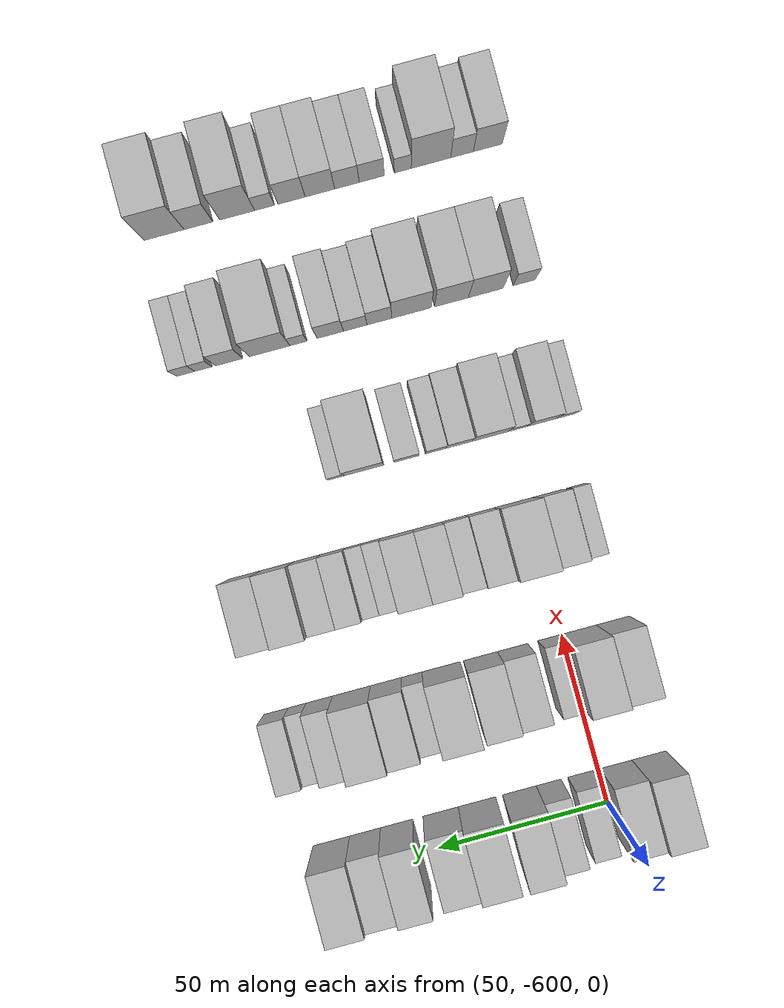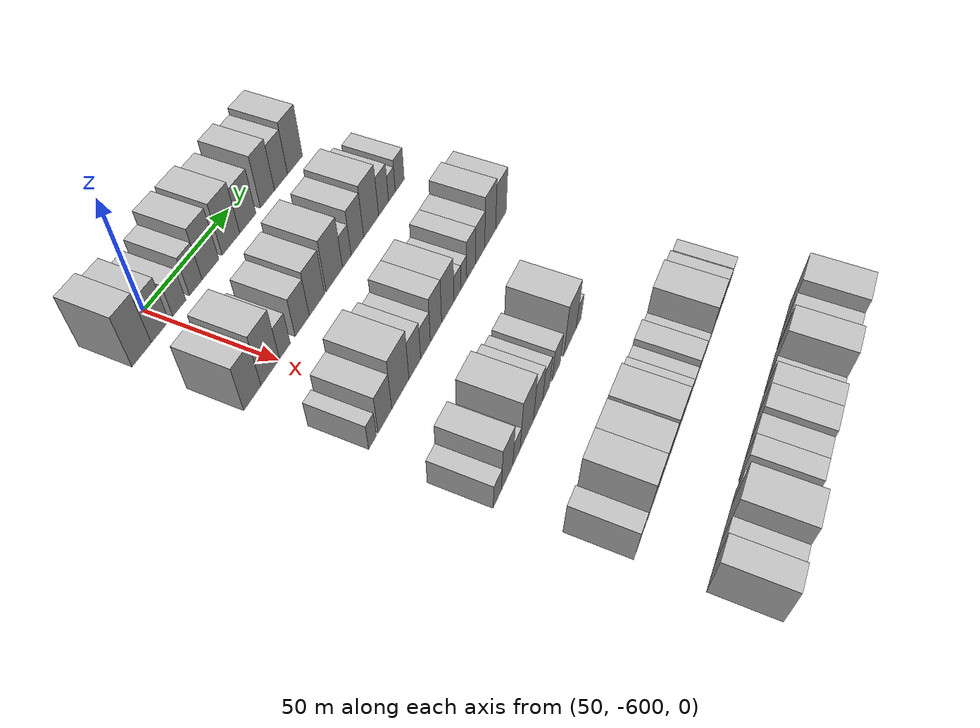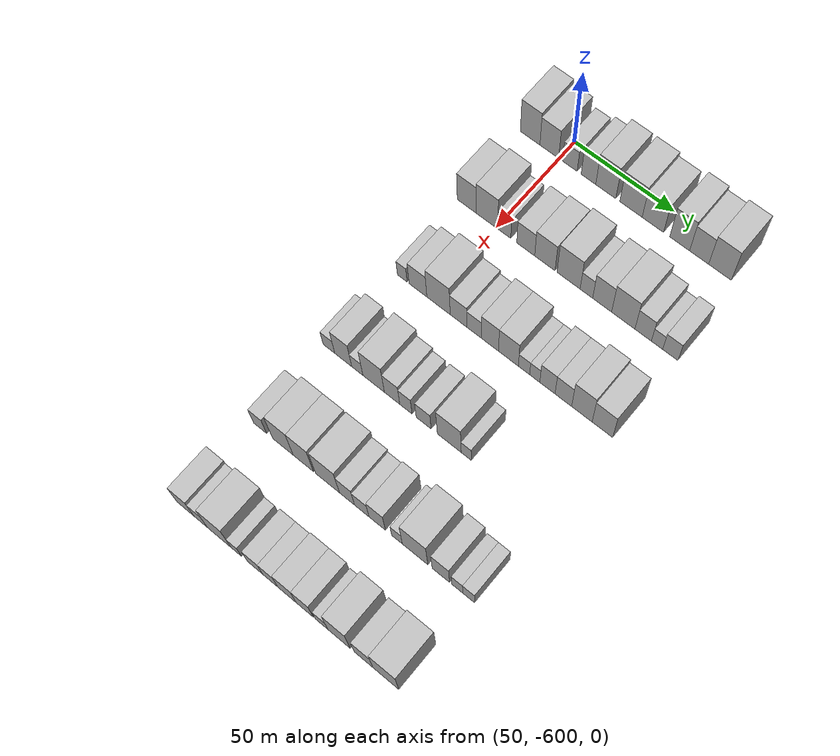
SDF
<sdf version="1.6">
 <world name="default">
  <model name="building_1">
   <static>1</static>
   <pose>50.0000 -614.9711 0 0.000000 0.000000 0.000000</pose>
   <link name="link">
    <pose>0 0 12.00 0 0 0</pose>
    <collision name="collision"><geometry><box><size>20.0000 10.0579 24.0000</size></box></geometry></collision>
    <visual name="visual">
     <cast_shadows>0</cast_shadows>
     <geometry><box><size>20.0000 10.0579 24.0000</size></box></geometry>
     <material>
      <script>
       <uri>model://HANNAS_wall/materials/scripts</uri>
       <uri>model://HANNAS_wall/materials/textures</uri>
       <name>vrc/HANNAS_wall</name>
      </script>
     </material>
    </visual>
   </link>
  </model>
  <model name="building_2">
   <static>1</static>
   <pose>50.0000 -605.1579 0 0.000000 0.000000 0.000000</pose>
   <link name="link">
    <pose>0 0 10.50 0 0 0</pose>
    <collision name="collision"><geometry><box><size>20.0000 9.5684 21.0000</size></box></geometry></collision>
    <visual name="visual">
     <cast_shadows>0</cast_shadows>
     <geometry><box><size>20.0000 9.5684 21.0000</size></box></geometry>
     <material>
      <script>
       <uri>model://HANNAS_wall/materials/scripts</uri>
       <uri>model://HANNAS_wall/materials/textures</uri>
       <name>vrc/HANNAS_wall</name>
      </script>
     </material>
    </visual>
   </link>
  </model>
  <model name="building_3">
   <static>1</static>
   <pose>50.0000 -594.6582 0 0.000000 0.000000 0.000000</pose>
   <link name="link">
    <pose>0 0 7.50 0 0 0</pose>
    <collision name="collision"><geometry><box><size>20.0000 7.4311 15.0000</size></box></geometry></collision>
    <visual name="visual">
     <cast_shadows>0</cast_shadows>
     <geometry><box><size>20.0000 7.4311 15.0000</size></box></geometry>
     <material>
      <script>
       <uri>model://HANNAS_wall/materials/scripts</uri>
       <uri>model://HANNAS_wall/materials/textures</uri>
       <name>vrc/HANNAS_wall</name>
      </script>
     </material>
    </visual>
   </link>
  </model>
  <model name="building_4">
   <static>1</static>
   <pose>50.0000 -585.2614 0 0.000000 0.000000 0.000000</pose>
   <link name="link">
    <pose>0 0 9.00 0 0 0</pose>
    <collision name="collision"><geometry><box><size>20.0000 7.3626 18.0000</size></box></geometry></collision>
    <visual name="visual">
     <cast_shadows>0</cast_shadows>
     <geometry><box><size>20.0000 7.3626 18.0000</size></box></geometry>
     <material>
      <script>
       <uri>model://HANNAS_wall/materials/scripts</uri>
       <uri>model://HANNAS_wall/materials/textures</uri>
       <name>vrc/HANNAS_wall</name>
      </script>
     </material>
    </visual>
   </link>
  </model>
  <model name="building_5">
   <static>1</static>
   <pose>50.0000 -576.5760 0 0.000000 0.000000 0.000000</pose>
   <link name="link">
    <pose>0 0 12.00 0 0 0</pose>
    <collision name="collision"><geometry><box><size>20.0000 10.0083 24.0000</size></box></geometry></collision>
    <visual name="visual">
     <cast_shadows>0</cast_shadows>
     <geometry><box><size>20.0000 10.0083 24.0000</size></box></geometry>
     <material>
      <script>
       <uri>model://HANNAS_wall/materials/scripts</uri>
       <uri>model://HANNAS_wall/materials/textures</uri>
       <name>vrc/HANNAS_wall</name>
      </script>
     </material>
    </visual>
   </link>
  </model>
  <model name="building_6">
   <static>1</static>
   <pose>50.0000 -564.0394 0 0.000000 0.000000 0.000000</pose>
   <link name="link">
    <pose>0 0 12.00 0 0 0</pose>
    <collision name="collision"><geometry><box><size>20.0000 11.0649 24.0000</size></box></geometry></collision>
    <visual name="visual">
     <cast_shadows>0</cast_shadows>
     <geometry><box><size>20.0000 11.0649 24.0000</size></box></geometry>
     <material>
      <script>
       <uri>model://HANNAS_wall/materials/scripts</uri>
       <uri>model://HANNAS_wall/materials/textures</uri>
       <name>vrc/HANNAS_wall</name>
      </script>
     </material>
    </visual>
   </link>
  </model>
  <model name="building_7">
   <static>1</static>
   <pose>50.0000 -553.2618 0 0.000000 0.000000 0.000000</pose>
   <link name="link">
    <pose>0 0 10.50 0 0 0</pose>
    <collision name="collision"><geometry><box><size>20.0000 10.4902 21.0000</size></box></geometry></collision>
    <visual name="visual">
     <cast_shadows>0</cast_shadows>
     <geometry><box><size>20.0000 10.4902 21.0000</size></box></geometry>
     <material>
      <script>
       <uri>model://HANNAS_wall/materials/scripts</uri>
       <uri>model://HANNAS_wall/materials/textures</uri>
       <name>vrc/HANNAS_wall</name>
      </script>
     </material>
    </visual>
   </link>
  </model>
  <model name="building_8">
   <static>1</static>
   <pose>50.0000 -540.2076 0 0.000000 0.000000 0.000000</pose>
   <link name="link">
    <pose>0 0 12.00 0 0 0</pose>
    <collision name="collision"><geometry><box><size>20.0000 9.6182 24.0000</size></box></geometry></collision>
    <visual name="visual">
     <cast_shadows>0</cast_shadows>
     <geometry><box><size>20.0000 9.6182 24.0000</size></box></geometry>
     <material>
      <script>
       <uri>model://HANNAS_wall/materials/scripts</uri>
       <uri>model://HANNAS_wall/materials/textures</uri>
       <name>vrc/HANNAS_wall</name>
      </script>
     </material>
    </visual>
   </link>
  </model>
  <model name="building_9">
   <static>1</static>
   <pose>50.0000 -530.8291 0 0.000000 0.000000 0.000000</pose>
   <link name="link">
    <pose>0 0 10.50 0 0 0</pose>
    <collision name="collision"><geometry><box><size>20.0000 9.1390 21.0000</size></box></geometry></collision>
    <visual name="visual">
     <cast_shadows>0</cast_shadows>
     <geometry><box><size>20.0000 9.1390 21.0000</size></box></geometry>
     <material>
      <script>
       <uri>model://HANNAS_wall/materials/scripts</uri>
       <uri>model://HANNAS_wall/materials/textures</uri>
       <name>vrc/HANNAS_wall</name>
      </script>
     </material>
    </visual>
   </link>
  </model>
  <model name="building_10">
   <static>1</static>
   <pose>50.0000 -520.8414 0 0.000000 0.000000 0.000000</pose>
   <link name="link">
    <pose>0 0 12.00 0 0 0</pose>
    <collision name="collision"><geometry><box><size>20.0000 10.8364 24.0000</size></box></geometry></collision>
    <visual name="visual">
     <cast_shadows>0</cast_shadows>
     <geometry><box><size>20.0000 10.8364 24.0000</size></box></geometry>
     <material>
      <script>
       <uri>model://HANNAS_wall/materials/scripts</uri>
       <uri>model://HANNAS_wall/materials/textures</uri>
       <name>vrc/HANNAS_wall</name>
      </script>
     </material>
    </visual>
   </link>
  </model>
  <model name="building_138">
   <static>1</static>
   <pose>90.0000 -615.1204 0 0.000000 0.000000 0.000000</pose>
   <link name="link">
    <pose>0 0 10.50 0 0 0</pose>
    <collision name="collision"><geometry><box><size>20.0000 9.7593 21.0000</size></box></geometry></collision>
    <visual name="visual">
     <cast_shadows>0</cast_shadows>
     <geometry><box><size>20.0000 9.7593 21.0000</size></box></geometry>
     <material>
      <script>
       <uri>model://HANNAS_wall/materials/scripts</uri>
       <uri>model://HANNAS_wall/materials/textures</uri>
       <name>vrc/HANNAS_wall</name>
      </script>
     </material>
    </visual>
   </link>
  </model>
  <model name="building_139">
   <static>1</static>
   <pose>90.0000 -604.8042 0 0.000000 0.000000 0.000000</pose>
   <link name="link">
    <pose>0 0 12.00 0 0 0</pose>
    <collision name="collision"><geometry><box><size>20.0000 10.8730 24.0000</size></box></geometry></collision>
    <visual name="visual">
     <cast_shadows>0</cast_shadows>
     <geometry><box><size>20.0000 10.8730 24.0000</size></box></geometry>
     <material>
      <script>
       <uri>model://HANNAS_wall/materials/scripts</uri>
       <uri>model://HANNAS_wall/materials/textures</uri>
       <name>vrc/HANNAS_wall</name>
      </script>
     </material>
    </visual>
   </link>
  </model>
  <model name="building_140">
   <static>1</static>
   <pose>90.0000 -596.0886 0 0.000000 0.000000 0.000000</pose>
   <link name="link">
    <pose>0 0 7.50 0 0 0</pose>
    <collision name="collision"><geometry><box><size>20.0000 6.5584 15.0000</size></box></geometry></collision>
    <visual name="visual">
     <cast_shadows>0</cast_shadows>
     <geometry><box><size>20.0000 6.5584 15.0000</size></box></geometry>
     <material>
      <script>
       <uri>model://HANNAS_wall/materials/scripts</uri>
       <uri>model://HANNAS_wall/materials/textures</uri>
       <name>vrc/HANNAS_wall</name>
      </script>
     </material>
    </visual>
   </link>
  </model>
  <model name="building_141">
   <static>1</static>
   <pose>90.0000 -585.3268 0 0.000000 0.000000 0.000000</pose>
   <link name="link">
    <pose>0 0 9.00 0 0 0</pose>
    <collision name="collision"><geometry><box><size>20.0000 8.9652 18.0000</size></box></geometry></collision>
    <visual name="visual">
     <cast_shadows>0</cast_shadows>
     <geometry><box><size>20.0000 8.9652 18.0000</size></box></geometry>
     <material>
      <script>
       <uri>model://HANNAS_wall/materials/scripts</uri>
       <uri>model://HANNAS_wall/materials/textures</uri>
       <name>vrc/HANNAS_wall</name>
      </script>
     </material>
    </visual>
   </link>
  </model>
  <model name="building_142">
   <static>1</static>
   <pose>90.0000 -575.8044 0 0.000000 0.000000 0.000000</pose>
   <link name="link">
    <pose>0 0 10.50 0 0 0</pose>
    <collision name="collision"><geometry><box><size>20.0000 10.0795 21.0000</size></box></geometry></collision>
    <visual name="visual">
     <cast_shadows>0</cast_shadows>
     <geometry><box><size>20.0000 10.0795 21.0000</size></box></geometry>
     <material>
      <script>
       <uri>model://HANNAS_wall/materials/scripts</uri>
       <uri>model://HANNAS_wall/materials/textures</uri>
       <name>vrc/HANNAS_wall</name>
      </script>
     </material>
    </visual>
   </link>
  </model>
  <model name="building_143">
   <static>1</static>
   <pose>90.0000 -564.1176 0 0.000000 0.000000 0.000000</pose>
   <link name="link">
    <pose>0 0 12.00 0 0 0</pose>
    <collision name="collision"><geometry><box><size>20.0000 11.2942 24.0000</size></box></geometry></collision>
    <visual name="visual">
     <cast_shadows>0</cast_shadows>
     <geometry><box><size>20.0000 11.2942 24.0000</size></box></geometry>
     <material>
      <script>
       <uri>model://HANNAS_wall/materials/scripts</uri>
       <uri>model://HANNAS_wall/materials/textures</uri>
       <name>vrc/HANNAS_wall</name>
      </script>
     </material>
    </visual>
   </link>
  </model>
  <model name="building_144">
   <static>1</static>
   <pose>90.0000 -555.4083 0 0.000000 0.000000 0.000000</pose>
   <link name="link">
    <pose>0 0 7.50 0 0 0</pose>
    <collision name="collision"><geometry><box><size>20.0000 6.1244 15.0000</size></box></geometry></collision>
    <visual name="visual">
     <cast_shadows>0</cast_shadows>
     <geometry><box><size>20.0000 6.1244 15.0000</size></box></geometry>
     <material>
      <script>
       <uri>model://HANNAS_wall/materials/scripts</uri>
       <uri>model://HANNAS_wall/materials/textures</uri>
       <name>vrc/HANNAS_wall</name>
      </script>
     </material>
    </visual>
   </link>
  </model>
  <model name="building_145">
   <static>1</static>
   <pose>90.0000 -547.7738 0 0.000000 0.000000 0.000000</pose>
   <link name="link">
    <pose>0 0 10.50 0 0 0</pose>
    <collision name="collision"><geometry><box><size>20.0000 9.1445 21.0000</size></box></geometry></collision>
    <visual name="visual">
     <cast_shadows>0</cast_shadows>
     <geometry><box><size>20.0000 9.1445 21.0000</size></box></geometry>
     <material>
      <script>
       <uri>model://HANNAS_wall/materials/scripts</uri>
       <uri>model://HANNAS_wall/materials/textures</uri>
       <name>vrc/HANNAS_wall</name>
      </script>
     </material>
    </visual>
   </link>
  </model>
  <model name="building_146">
   <static>1</static>
   <pose>90.0000 -537.5924 0 0.000000 0.000000 0.000000</pose>
   <link name="link">
    <pose>0 0 12.00 0 0 0</pose>
    <collision name="collision"><geometry><box><size>20.0000 11.2184 24.0000</size></box></geometry></collision>
    <visual name="visual">
     <cast_shadows>0</cast_shadows>
     <geometry><box><size>20.0000 11.2184 24.0000</size></box></geometry>
     <material>
      <script>
       <uri>model://HANNAS_wall/materials/scripts</uri>
       <uri>model://HANNAS_wall/materials/textures</uri>
       <name>vrc/HANNAS_wall</name>
      </script>
     </material>
    </visual>
   </link>
  </model>
  <model name="building_147">
   <static>1</static>
   <pose>90.0000 -528.0779 0 0.000000 0.000000 0.000000</pose>
   <link name="link">
    <pose>0 0 9.00 0 0 0</pose>
    <collision name="collision"><geometry><box><size>20.0000 7.8106 18.0000</size></box></geometry></collision>
    <visual name="visual">
     <cast_shadows>0</cast_shadows>
     <geometry><box><size>20.0000 7.8106 18.0000</size></box></geometry>
     <material>
      <script>
       <uri>model://HANNAS_wall/materials/scripts</uri>
       <uri>model://HANNAS_wall/materials/textures</uri>
       <name>vrc/HANNAS_wall</name>
      </script>
     </material>
    </visual>
   </link>
  </model>
  <model name="building_148">
   <static>1</static>
   <pose>90.0000 -521.5125 0 0.000000 0.000000 0.000000</pose>
   <link name="link">
    <pose>0 0 6.00 0 0 0</pose>
    <collision name="collision"><geometry><box><size>20.0000 5.3202 12.0000</size></box></geometry></collision>
    <visual name="visual">
     <cast_shadows>0</cast_shadows>
     <geometry><box><size>20.0000 5.3202 12.0000</size></box></geometry>
     <material>
      <script>
       <uri>model://HANNAS_wall/materials/scripts</uri>
       <uri>model://HANNAS_wall/materials/textures</uri>
       <name>vrc/HANNAS_wall</name>
      </script>
     </material>
    </visual>
   </link>
  </model>
  <model name="building_149">
   <static>1</static>
   <pose>90.0000 -515.2461 0 0.000000 0.000000 0.000000</pose>
   <link name="link">
    <pose>0 0 7.50 0 0 0</pose>
    <collision name="collision"><geometry><box><size>20.0000 7.2126 15.0000</size></box></geometry></collision>
    <visual name="visual">
     <cast_shadows>0</cast_shadows>
     <geometry><box><size>20.0000 7.2126 15.0000</size></box></geometry>
     <material>
      <script>
       <uri>model://HANNAS_wall/materials/scripts</uri>
       <uri>model://HANNAS_wall/materials/textures</uri>
       <name>vrc/HANNAS_wall</name>
      </script>
     </material>
    </visual>
   </link>
  </model>
  <model name="building_270">
   <static>1</static>
   <pose>130.0000 -614.5367 0 0.000000 0.000000 0.000000</pose>
   <link name="link">
    <pose>0 0 6.00 0 0 0</pose>
    <collision name="collision"><geometry><box><size>20.0000 4.9266 12.0000</size></box></geometry></collision>
    <visual name="visual">
     <cast_shadows>0</cast_shadows>
     <geometry><box><size>20.0000 4.9266 12.0000</size></box></geometry>
     <material>
      <script>
       <uri>model://HANNAS_wall/materials/scripts</uri>
       <uri>model://HANNAS_wall/materials/textures</uri>
       <name>vrc/HANNAS_wall</name>
      </script>
     </material>
    </visual>
   </link>
  </model>
  <model name="building_271">
   <static>1</static>
   <pose>130.0000 -606.6015 0 0.000000 0.000000 0.000000</pose>
   <link name="link">
    <pose>0 0 9.00 0 0 0</pose>
    <collision name="collision"><geometry><box><size>20.0000 8.9438 18.0000</size></box></geometry></collision>
    <visual name="visual">
     <cast_shadows>0</cast_shadows>
     <geometry><box><size>20.0000 8.9438 18.0000</size></box></geometry>
     <material>
      <script>
       <uri>model://HANNAS_wall/materials/scripts</uri>
       <uri>model://HANNAS_wall/materials/textures</uri>
       <name>vrc/HANNAS_wall</name>
      </script>
     </material>
    </visual>
   </link>
  </model>
  <model name="building_272">
   <static>1</static>
   <pose>130.0000 -596.2729 0 0.000000 0.000000 0.000000</pose>
   <link name="link">
    <pose>0 0 12.00 0 0 0</pose>
    <collision name="collision"><geometry><box><size>20.0000 11.7134 24.0000</size></box></geometry></collision>
    <visual name="visual">
     <cast_shadows>0</cast_shadows>
     <geometry><box><size>20.0000 11.7134 24.0000</size></box></geometry>
     <material>
      <script>
       <uri>model://HANNAS_wall/materials/scripts</uri>
       <uri>model://HANNAS_wall/materials/textures</uri>
       <name>vrc/HANNAS_wall</name>
      </script>
     </material>
    </visual>
   </link>
  </model>
  <model name="building_273">
   <static>1</static>
   <pose>130.0000 -586.2675 0 0.000000 0.000000 0.000000</pose>
   <link name="link">
    <pose>0 0 9.00 0 0 0</pose>
    <collision name="collision"><geometry><box><size>20.0000 8.2974 18.0000</size></box></geometry></collision>
    <visual name="visual">
     <cast_shadows>0</cast_shadows>
     <geometry><box><size>20.0000 8.2974 18.0000</size></box></geometry>
     <material>
      <script>
       <uri>model://HANNAS_wall/materials/scripts</uri>
       <uri>model://HANNAS_wall/materials/textures</uri>
       <name>vrc/HANNAS_wall</name>
      </script>
     </material>
    </visual>
   </link>
  </model>
  <model name="building_274">
   <static>1</static>
   <pose>130.0000 -578.5750 0 0.000000 0.000000 0.000000</pose>
   <link name="link">
    <pose>0 0 7.50 0 0 0</pose>
    <collision name="collision"><geometry><box><size>20.0000 7.0877 15.0000</size></box></geometry></collision>
    <visual name="visual">
     <cast_shadows>0</cast_shadows>
     <geometry><box><size>20.0000 7.0877 15.0000</size></box></geometry>
     <material>
      <script>
       <uri>model://HANNAS_wall/materials/scripts</uri>
       <uri>model://HANNAS_wall/materials/textures</uri>
       <name>vrc/HANNAS_wall</name>
      </script>
     </material>
    </visual>
   </link>
  </model>
  <model name="building_275">
   <static>1</static>
   <pose>130.0000 -570.8018 0 0.000000 0.000000 0.000000</pose>
   <link name="link">
    <pose>0 0 10.50 0 0 0</pose>
    <collision name="collision"><geometry><box><size>20.0000 8.4588 21.0000</size></box></geometry></collision>
    <visual name="visual">
     <cast_shadows>0</cast_shadows>
     <geometry><box><size>20.0000 8.4588 21.0000</size></box></geometry>
     <material>
      <script>
       <uri>model://HANNAS_wall/materials/scripts</uri>
       <uri>model://HANNAS_wall/materials/textures</uri>
       <name>vrc/HANNAS_wall</name>
      </script>
     </material>
    </visual>
   </link>
  </model>
  <model name="building_276">
   <static>1</static>
   <pose>130.0000 -561.7708 0 0.000000 0.000000 0.000000</pose>
   <link name="link">
    <pose>0 0 10.50 0 0 0</pose>
    <collision name="collision"><geometry><box><size>20.0000 9.6031 21.0000</size></box></geometry></collision>
    <visual name="visual">
     <cast_shadows>0</cast_shadows>
     <geometry><box><size>20.0000 9.6031 21.0000</size></box></geometry>
     <material>
      <script>
       <uri>model://HANNAS_wall/materials/scripts</uri>
       <uri>model://HANNAS_wall/materials/textures</uri>
       <name>vrc/HANNAS_wall</name>
      </script>
     </material>
    </visual>
   </link>
  </model>
  <model name="building_277">
   <static>1</static>
   <pose>130.0000 -554.2524 0 0.000000 0.000000 0.000000</pose>
   <link name="link">
    <pose>0 0 6.00 0 0 0</pose>
    <collision name="collision"><geometry><box><size>20.0000 5.4337 12.0000</size></box></geometry></collision>
    <visual name="visual">
     <cast_shadows>0</cast_shadows>
     <geometry><box><size>20.0000 5.4337 12.0000</size></box></geometry>
     <material>
      <script>
       <uri>model://HANNAS_wall/materials/scripts</uri>
       <uri>model://HANNAS_wall/materials/textures</uri>
       <name>vrc/HANNAS_wall</name>
      </script>
     </material>
    </visual>
   </link>
  </model>
  <model name="building_278">
   <static>1</static>
   <pose>130.0000 -549.0983 0 0.000000 0.000000 0.000000</pose>
   <link name="link">
    <pose>0 0 6.00 0 0 0</pose>
    <collision name="collision"><geometry><box><size>20.0000 4.8746 12.0000</size></box></geometry></collision>
    <visual name="visual">
     <cast_shadows>0</cast_shadows>
     <geometry><box><size>20.0000 4.8746 12.0000</size></box></geometry>
     <material>
      <script>
       <uri>model://HANNAS_wall/materials/scripts</uri>
       <uri>model://HANNAS_wall/materials/textures</uri>
       <name>vrc/HANNAS_wall</name>
      </script>
     </material>
    </visual>
   </link>
  </model>
  <model name="building_279">
   <static>1</static>
   <pose>130.0000 -543.0120 0 0.000000 0.000000 0.000000</pose>
   <link name="link">
    <pose>0 0 9.00 0 0 0</pose>
    <collision name="collision"><geometry><box><size>20.0000 7.2980 18.0000</size></box></geometry></collision>
    <visual name="visual">
     <cast_shadows>0</cast_shadows>
     <geometry><box><size>20.0000 7.2980 18.0000</size></box></geometry>
     <material>
      <script>
       <uri>model://HANNAS_wall/materials/scripts</uri>
       <uri>model://HANNAS_wall/materials/textures</uri>
       <name>vrc/HANNAS_wall</name>
      </script>
     </material>
    </visual>
   </link>
  </model>
  <model name="building_280">
   <static>1</static>
   <pose>130.0000 -535.4194 0 0.000000 0.000000 0.000000</pose>
   <link name="link">
    <pose>0 0 9.00 0 0 0</pose>
    <collision name="collision"><geometry><box><size>20.0000 7.8872 18.0000</size></box></geometry></collision>
    <visual name="visual">
     <cast_shadows>0</cast_shadows>
     <geometry><box><size>20.0000 7.8872 18.0000</size></box></geometry>
     <material>
      <script>
       <uri>model://HANNAS_wall/materials/scripts</uri>
       <uri>model://HANNAS_wall/materials/textures</uri>
       <name>vrc/HANNAS_wall</name>
      </script>
     </material>
    </visual>
   </link>
  </model>
  <model name="building_281">
   <static>1</static>
   <pose>130.0000 -526.6479 0 0.000000 0.000000 0.000000</pose>
   <link name="link">
    <pose>0 0 12.00 0 0 0</pose>
    <collision name="collision"><geometry><box><size>20.0000 9.6558 24.0000</size></box></geometry></collision>
    <visual name="visual">
     <cast_shadows>0</cast_shadows>
     <geometry><box><size>20.0000 9.6558 24.0000</size></box></geometry>
     <material>
      <script>
       <uri>model://HANNAS_wall/materials/scripts</uri>
       <uri>model://HANNAS_wall/materials/textures</uri>
       <name>vrc/HANNAS_wall</name>
      </script>
     </material>
    </visual>
   </link>
  </model>
  <model name="building_282">
   <static>1</static>
   <pose>130.0000 -517.0044 0 0.000000 0.000000 0.000000</pose>
   <link name="link">
    <pose>0 0 10.50 0 0 0</pose>
    <collision name="collision"><geometry><box><size>20.0000 9.6312 21.0000</size></box></geometry></collision>
    <visual name="visual">
     <cast_shadows>0</cast_shadows>
     <geometry><box><size>20.0000 9.6312 21.0000</size></box></geometry>
     <material>
      <script>
       <uri>model://HANNAS_wall/materials/scripts</uri>
       <uri>model://HANNAS_wall/materials/textures</uri>
       <name>vrc/HANNAS_wall</name>
      </script>
     </material>
    </visual>
   </link>
  </model>
  <model name="building_414">
   <static>1</static>
   <pose>170.0000 -617.0510 0 0.000000 0.000000 0.000000</pose>
   <link name="link">
    <pose>0 0 6.00 0 0 0</pose>
    <collision name="collision"><geometry><box><size>20.0000 5.8980 12.0000</size></box></geometry></collision>
    <visual name="visual">
     <cast_shadows>0</cast_shadows>
     <geometry><box><size>20.0000 5.8980 12.0000</size></box></geometry>
     <material>
      <script>
       <uri>model://HANNAS_wall/materials/scripts</uri>
       <uri>model://HANNAS_wall/materials/textures</uri>
       <name>vrc/HANNAS_wall</name>
      </script>
     </material>
    </visual>
   </link>
  </model>
  <model name="building_415">
   <static>1</static>
   <pose>170.0000 -609.8216 0 0.000000 0.000000 0.000000</pose>
   <link name="link">
    <pose>0 0 10.50 0 0 0</pose>
    <collision name="collision"><geometry><box><size>20.0000 8.5607 21.0000</size></box></geometry></collision>
    <visual name="visual">
     <cast_shadows>0</cast_shadows>
     <geometry><box><size>20.0000 8.5607 21.0000</size></box></geometry>
     <material>
      <script>
       <uri>model://HANNAS_wall/materials/scripts</uri>
       <uri>model://HANNAS_wall/materials/textures</uri>
       <name>vrc/HANNAS_wall</name>
      </script>
     </material>
    </visual>
   </link>
  </model>
  <model name="building_416">
   <static>1</static>
   <pose>170.0000 -602.7391 0 0.000000 0.000000 0.000000</pose>
   <link name="link">
    <pose>0 0 6.00 0 0 0</pose>
    <collision name="collision"><geometry><box><size>20.0000 5.6044 12.0000</size></box></geometry></collision>
    <visual name="visual">
     <cast_shadows>0</cast_shadows>
     <geometry><box><size>20.0000 5.6044 12.0000</size></box></geometry>
     <material>
      <script>
       <uri>model://HANNAS_wall/materials/scripts</uri>
       <uri>model://HANNAS_wall/materials/textures</uri>
       <name>vrc/HANNAS_wall</name>
      </script>
     </material>
    </visual>
   </link>
  </model>
  <model name="building_417">
   <static>1</static>
   <pose>170.0000 -594.6001 0 0.000000 0.000000 0.000000</pose>
   <link name="link">
    <pose>0 0 12.00 0 0 0</pose>
    <collision name="collision"><geometry><box><size>20.0000 10.6735 24.0000</size></box></geometry></collision>
    <visual name="visual">
     <cast_shadows>0</cast_shadows>
     <geometry><box><size>20.0000 10.6735 24.0000</size></box></geometry>
     <material>
      <script>
       <uri>model://HANNAS_wall/materials/scripts</uri>
       <uri>model://HANNAS_wall/materials/textures</uri>
       <name>vrc/HANNAS_wall</name>
      </script>
     </material>
    </visual>
   </link>
  </model>
  <model name="building_418">
   <static>1</static>
   <pose>170.0000 -585.4856 0 0.000000 0.000000 0.000000</pose>
   <link name="link">
    <pose>0 0 9.00 0 0 0</pose>
    <collision name="collision"><geometry><box><size>20.0000 7.5557 18.0000</size></box></geometry></collision>
    <visual name="visual">
     <cast_shadows>0</cast_shadows>
     <geometry><box><size>20.0000 7.5557 18.0000</size></box></geometry>
     <material>
      <script>
       <uri>model://HANNAS_wall/materials/scripts</uri>
       <uri>model://HANNAS_wall/materials/textures</uri>
       <name>vrc/HANNAS_wall</name>
      </script>
     </material>
    </visual>
   </link>
  </model>
  <model name="building_419">
   <static>1</static>
   <pose>170.0000 -578.6971 0 0.000000 0.000000 0.000000</pose>
   <link name="link">
    <pose>0 0 7.50 0 0 0</pose>
    <collision name="collision"><geometry><box><size>20.0000 6.0212 15.0000</size></box></geometry></collision>
    <visual name="visual">
     <cast_shadows>0</cast_shadows>
     <geometry><box><size>20.0000 6.0212 15.0000</size></box></geometry>
     <material>
      <script>
       <uri>model://HANNAS_wall/materials/scripts</uri>
       <uri>model://HANNAS_wall/materials/textures</uri>
       <name>vrc/HANNAS_wall</name>
      </script>
     </material>
    </visual>
   </link>
  </model>
  <model name="building_420">
   <static>1</static>
   <pose>170.0000 -570.0509 0 0.000000 0.000000 0.000000</pose>
   <link name="link">
    <pose>0 0 7.50 0 0 0</pose>
    <collision name="collision"><geometry><box><size>20.0000 7.2711 15.0000</size></box></geometry></collision>
    <visual name="visual">
     <cast_shadows>0</cast_shadows>
     <geometry><box><size>20.0000 7.2711 15.0000</size></box></geometry>
     <material>
      <script>
       <uri>model://HANNAS_wall/materials/scripts</uri>
       <uri>model://HANNAS_wall/materials/textures</uri>
       <name>vrc/HANNAS_wall</name>
      </script>
     </material>
    </visual>
   </link>
  </model>
  <model name="building_421">
   <static>1</static>
   <pose>170.0000 -557.6803 0 0.000000 0.000000 0.000000</pose>
   <link name="link">
    <pose>0 0 12.00 0 0 0</pose>
    <collision name="collision"><geometry><box><size>20.0000 11.4701 24.0000</size></box></geometry></collision>
    <visual name="visual">
     <cast_shadows>0</cast_shadows>
     <geometry><box><size>20.0000 11.4701 24.0000</size></box></geometry>
     <material>
      <script>
       <uri>model://HANNAS_wall/materials/scripts</uri>
       <uri>model://HANNAS_wall/materials/textures</uri>
       <name>vrc/HANNAS_wall</name>
      </script>
     </material>
    </visual>
   </link>
  </model>
  <model name="building_422">
   <static>1</static>
   <pose>170.0000 -549.5395 0 0.000000 0.000000 0.000000</pose>
   <link name="link">
    <pose>0 0 6.00 0 0 0</pose>
    <collision name="collision"><geometry><box><size>20.0000 4.8114 12.0000</size></box></geometry></collision>
    <visual name="visual">
     <cast_shadows>0</cast_shadows>
     <geometry><box><size>20.0000 4.8114 12.0000</size></box></geometry>
     <material>
      <script>
       <uri>model://HANNAS_wall/materials/scripts</uri>
       <uri>model://HANNAS_wall/materials/textures</uri>
       <name>vrc/HANNAS_wall</name>
      </script>
     </material>
    </visual>
   </link>
  </model>
  <model name="building_543">
   <static>1</static>
   <pose>210.0000 -615.7152 0 0.000000 0.000000 0.000000</pose>
   <link name="link">
    <pose>0 0 7.50 0 0 0</pose>
    <collision name="collision"><geometry><box><size>20.0000 6.5696 15.0000</size></box></geometry></collision>
    <visual name="visual">
     <cast_shadows>0</cast_shadows>
     <geometry><box><size>20.0000 6.5696 15.0000</size></box></geometry>
     <material>
      <script>
       <uri>model://HANNAS_wall/materials/scripts</uri>
       <uri>model://HANNAS_wall/materials/textures</uri>
       <name>vrc/HANNAS_wall</name>
      </script>
     </material>
    </visual>
   </link>
  </model>
  <model name="building_544">
   <static>1</static>
   <pose>210.0000 -604.3114 0 0.000000 0.000000 0.000000</pose>
   <link name="link">
    <pose>0 0 12.00 0 0 0</pose>
    <collision name="collision"><geometry><box><size>20.0000 10.2380 24.0000</size></box></geometry></collision>
    <visual name="visual">
     <cast_shadows>0</cast_shadows>
     <geometry><box><size>20.0000 10.2380 24.0000</size></box></geometry>
     <material>
      <script>
       <uri>model://HANNAS_wall/materials/scripts</uri>
       <uri>model://HANNAS_wall/materials/textures</uri>
       <name>vrc/HANNAS_wall</name>
      </script>
     </material>
    </visual>
   </link>
  </model>
  <model name="building_545">
   <static>1</static>
   <pose>210.0000 -594.1859 0 0.000000 0.000000 0.000000</pose>
   <link name="link">
    <pose>0 0 12.00 0 0 0</pose>
    <collision name="collision"><geometry><box><size>20.0000 10.0129 24.0000</size></box></geometry></collision>
    <visual name="visual">
     <cast_shadows>0</cast_shadows>
     <geometry><box><size>20.0000 10.0129 24.0000</size></box></geometry>
     <material>
      <script>
       <uri>model://HANNAS_wall/materials/scripts</uri>
       <uri>model://HANNAS_wall/materials/textures</uri>
       <name>vrc/HANNAS_wall</name>
      </script>
     </material>
    </visual>
   </link>
  </model>
  <model name="building_546">
   <static>1</static>
   <pose>210.0000 -582.3312 0 0.000000 0.000000 0.000000</pose>
   <link name="link">
    <pose>0 0 12.00 0 0 0</pose>
    <collision name="collision"><geometry><box><size>20.0000 11.6965 24.0000</size></box></geometry></collision>
    <visual name="visual">
     <cast_shadows>0</cast_shadows>
     <geometry><box><size>20.0000 11.6965 24.0000</size></box></geometry>
     <material>
      <script>
       <uri>model://HANNAS_wall/materials/scripts</uri>
       <uri>model://HANNAS_wall/materials/textures</uri>
       <name>vrc/HANNAS_wall</name>
      </script>
     </material>
    </visual>
   </link>
  </model>
  <model name="building_547">
   <static>1</static>
   <pose>210.0000 -572.8363 0 0.000000 0.000000 0.000000</pose>
   <link name="link">
    <pose>0 0 9.00 0 0 0</pose>
    <collision name="collision"><geometry><box><size>20.0000 7.2933 18.0000</size></box></geometry></collision>
    <visual name="visual">
     <cast_shadows>0</cast_shadows>
     <geometry><box><size>20.0000 7.2933 18.0000</size></box></geometry>
     <material>
      <script>
       <uri>model://HANNAS_wall/materials/scripts</uri>
       <uri>model://HANNAS_wall/materials/textures</uri>
       <name>vrc/HANNAS_wall</name>
      </script>
     </material>
    </visual>
   </link>
  </model>
  <model name="building_548">
   <static>1</static>
   <pose>210.0000 -565.7066 0 0.000000 0.000000 0.000000</pose>
   <link name="link">
    <pose>0 0 7.50 0 0 0</pose>
    <collision name="collision"><geometry><box><size>20.0000 6.9661 15.0000</size></box></geometry></collision>
    <visual name="visual">
     <cast_shadows>0</cast_shadows>
     <geometry><box><size>20.0000 6.9661 15.0000</size></box></geometry>
     <material>
      <script>
       <uri>model://HANNAS_wall/materials/scripts</uri>
       <uri>model://HANNAS_wall/materials/textures</uri>
       <name>vrc/HANNAS_wall</name>
      </script>
     </material>
    </visual>
   </link>
  </model>
  <model name="building_549">
   <static>1</static>
   <pose>210.0000 -558.3181 0 0.000000 0.000000 0.000000</pose>
   <link name="link">
    <pose>0 0 9.00 0 0 0</pose>
    <collision name="collision"><geometry><box><size>20.0000 7.8110 18.0000</size></box></geometry></collision>
    <visual name="visual">
     <cast_shadows>0</cast_shadows>
     <geometry><box><size>20.0000 7.8110 18.0000</size></box></geometry>
     <material>
      <script>
       <uri>model://HANNAS_wall/materials/scripts</uri>
       <uri>model://HANNAS_wall/materials/textures</uri>
       <name>vrc/HANNAS_wall</name>
      </script>
     </material>
    </visual>
   </link>
  </model>
  <model name="building_550">
   <static>1</static>
   <pose>210.0000 -548.8900 0 0.000000 0.000000 0.000000</pose>
   <link name="link">
    <pose>0 0 6.00 0 0 0</pose>
    <collision name="collision"><geometry><box><size>20.0000 5.0453 12.0000</size></box></geometry></collision>
    <visual name="visual">
     <cast_shadows>0</cast_shadows>
     <geometry><box><size>20.0000 5.0453 12.0000</size></box></geometry>
     <material>
      <script>
       <uri>model://HANNAS_wall/materials/scripts</uri>
       <uri>model://HANNAS_wall/materials/textures</uri>
       <name>vrc/HANNAS_wall</name>
      </script>
     </material>
    </visual>
   </link>
  </model>
  <model name="building_551">
   <static>1</static>
   <pose>210.0000 -540.3730 0 0.000000 0.000000 0.000000</pose>
   <link name="link">
    <pose>0 0 12.00 0 0 0</pose>
    <collision name="collision"><geometry><box><size>20.0000 11.9888 24.0000</size></box></geometry></collision>
    <visual name="visual">
     <cast_shadows>0</cast_shadows>
     <geometry><box><size>20.0000 11.9888 24.0000</size></box></geometry>
     <material>
      <script>
       <uri>model://HANNAS_wall/materials/scripts</uri>
       <uri>model://HANNAS_wall/materials/textures</uri>
       <name>vrc/HANNAS_wall</name>
      </script>
     </material>
    </visual>
   </link>
  </model>
  <model name="building_552">
   <static>1</static>
   <pose>210.0000 -528.3389 0 0.000000 0.000000 0.000000</pose>
   <link name="link">
    <pose>0 0 9.00 0 0 0</pose>
    <collision name="collision"><geometry><box><size>20.0000 8.0794 18.0000</size></box></geometry></collision>
    <visual name="visual">
     <cast_shadows>0</cast_shadows>
     <geometry><box><size>20.0000 8.0794 18.0000</size></box></geometry>
     <material>
      <script>
       <uri>model://HANNAS_wall/materials/scripts</uri>
       <uri>model://HANNAS_wall/materials/textures</uri>
       <name>vrc/HANNAS_wall</name>
      </script>
     </material>
    </visual>
   </link>
  </model>
  <model name="building_553">
   <static>1</static>
   <pose>210.0000 -520.7432 0 0.000000 0.000000 0.000000</pose>
   <link name="link">
    <pose>0 0 6.00 0 0 0</pose>
    <collision name="collision"><geometry><box><size>20.0000 5.1121 12.0000</size></box></geometry></collision>
    <visual name="visual">
     <cast_shadows>0</cast_shadows>
     <geometry><box><size>20.0000 5.1121 12.0000</size></box></geometry>
     <material>
      <script>
       <uri>model://HANNAS_wall/materials/scripts</uri>
       <uri>model://HANNAS_wall/materials/textures</uri>
       <name>vrc/HANNAS_wall</name>
      </script>
     </material>
    </visual>
   </link>
  </model>
  <model name="building_554">
   <static>1</static>
   <pose>210.0000 -515.4722 0 0.000000 0.000000 0.000000</pose>
   <link name="link">
    <pose>0 0 6.00 0 0 0</pose>
    <collision name="collision"><geometry><box><size>20.0000 5.4299 12.0000</size></box></geometry></collision>
    <visual name="visual">
     <cast_shadows>0</cast_shadows>
     <geometry><box><size>20.0000 5.4299 12.0000</size></box></geometry>
     <material>
      <script>
       <uri>model://HANNAS_wall/materials/scripts</uri>
       <uri>model://HANNAS_wall/materials/textures</uri>
       <name>vrc/HANNAS_wall</name>
      </script>
     </material>
    </visual>
   </link>
  </model>
  <model name="building_689">
   <static>1</static>
   <pose>250.0000 -615.7111 0 0.000000 0.000000 0.000000</pose>
   <link name="link">
    <pose>0 0 9.00 0 0 0</pose>
    <collision name="collision"><geometry><box><size>20.0000 8.5778 18.0000</size></box></geometry></collision>
    <visual name="visual">
     <cast_shadows>0</cast_shadows>
     <geometry><box><size>20.0000 8.5778 18.0000</size></box></geometry>
     <material>
      <script>
       <uri>model://HANNAS_wall/materials/scripts</uri>
       <uri>model://HANNAS_wall/materials/textures</uri>
       <name>vrc/HANNAS_wall</name>
      </script>
     </material>
    </visual>
   </link>
  </model>
  <model name="building_690">
   <static>1</static>
   <pose>250.0000 -608.0655 0 0.000000 0.000000 0.000000</pose>
   <link name="link">
    <pose>0 0 7.50 0 0 0</pose>
    <collision name="collision"><geometry><box><size>20.0000 6.7133 15.0000</size></box></geometry></collision>
    <visual name="visual">
     <cast_shadows>0</cast_shadows>
     <geometry><box><size>20.0000 6.7133 15.0000</size></box></geometry>
     <material>
      <script>
       <uri>model://HANNAS_wall/materials/scripts</uri>
       <uri>model://HANNAS_wall/materials/textures</uri>
       <name>vrc/HANNAS_wall</name>
      </script>
     </material>
    </visual>
   </link>
  </model>
  <model name="building_691">
   <static>1</static>
   <pose>250.0000 -598.8656 0 0.000000 0.000000 0.000000</pose>
   <link name="link">
    <pose>0 0 12.00 0 0 0</pose>
    <collision name="collision"><geometry><box><size>20.0000 11.6865 24.0000</size></box></geometry></collision>
    <visual name="visual">
     <cast_shadows>0</cast_shadows>
     <geometry><box><size>20.0000 11.6865 24.0000</size></box></geometry>
     <material>
      <script>
       <uri>model://HANNAS_wall/materials/scripts</uri>
       <uri>model://HANNAS_wall/materials/textures</uri>
       <name>vrc/HANNAS_wall</name>
      </script>
     </material>
    </visual>
   </link>
  </model>
  <model name="building_692">
   <static>1</static>
   <pose>250.0000 -590.5232 0 0.000000 0.000000 0.000000</pose>
   <link name="link">
    <pose>0 0 6.00 0 0 0</pose>
    <collision name="collision"><geometry><box><size>20.0000 4.9984 12.0000</size></box></geometry></collision>
    <visual name="visual">
     <cast_shadows>0</cast_shadows>
     <geometry><box><size>20.0000 4.9984 12.0000</size></box></geometry>
     <material>
      <script>
       <uri>model://HANNAS_wall/materials/scripts</uri>
       <uri>model://HANNAS_wall/materials/textures</uri>
       <name>vrc/HANNAS_wall</name>
      </script>
     </material>
    </visual>
   </link>
  </model>
  <model name="building_693">
   <static>1</static>
   <pose>250.0000 -581.3292 0 0.000000 0.000000 0.000000</pose>
   <link name="link">
    <pose>0 0 7.50 0 0 0</pose>
    <collision name="collision"><geometry><box><size>20.0000 7.3896 15.0000</size></box></geometry></collision>
    <visual name="visual">
     <cast_shadows>0</cast_shadows>
     <geometry><box><size>20.0000 7.3896 15.0000</size></box></geometry>
     <material>
      <script>
       <uri>model://HANNAS_wall/materials/scripts</uri>
       <uri>model://HANNAS_wall/materials/textures</uri>
       <name>vrc/HANNAS_wall</name>
      </script>
     </material>
    </visual>
   </link>
  </model>
  <model name="building_694">
   <static>1</static>
   <pose>250.0000 -573.9881 0 0.000000 0.000000 0.000000</pose>
   <link name="link">
    <pose>0 0 7.50 0 0 0</pose>
    <collision name="collision"><geometry><box><size>20.0000 7.2926 15.0000</size></box></geometry></collision>
    <visual name="visual">
     <cast_shadows>0</cast_shadows>
     <geometry><box><size>20.0000 7.2926 15.0000</size></box></geometry>
     <material>
      <script>
       <uri>model://HANNAS_wall/materials/scripts</uri>
       <uri>model://HANNAS_wall/materials/textures</uri>
       <name>vrc/HANNAS_wall</name>
      </script>
     </material>
    </visual>
   </link>
  </model>
  <model name="building_695">
   <static>1</static>
   <pose>250.0000 -565.9757 0 0.000000 0.000000 0.000000</pose>
   <link name="link">
    <pose>0 0 9.00 0 0 0</pose>
    <collision name="collision"><geometry><box><size>20.0000 8.7323 18.0000</size></box></geometry></collision>
    <visual name="visual">
     <cast_shadows>0</cast_shadows>
     <geometry><box><size>20.0000 8.7323 18.0000</size></box></geometry>
     <material>
      <script>
       <uri>model://HANNAS_wall/materials/scripts</uri>
       <uri>model://HANNAS_wall/materials/textures</uri>
       <name>vrc/HANNAS_wall</name>
      </script>
     </material>
    </visual>
   </link>
  </model>
  <model name="building_696">
   <static>1</static>
   <pose>250.0000 -557.5761 0 0.000000 0.000000 0.000000</pose>
   <link name="link">
    <pose>0 0 9.00 0 0 0</pose>
    <collision name="collision"><geometry><box><size>20.0000 8.0668 18.0000</size></box></geometry></collision>
    <visual name="visual">
     <cast_shadows>0</cast_shadows>
     <geometry><box><size>20.0000 8.0668 18.0000</size></box></geometry>
     <material>
      <script>
       <uri>model://HANNAS_wall/materials/scripts</uri>
       <uri>model://HANNAS_wall/materials/textures</uri>
       <name>vrc/HANNAS_wall</name>
      </script>
     </material>
    </visual>
   </link>
  </model>
  <model name="building_697">
   <static>1</static>
   <pose>250.0000 -549.5818 0 0.000000 0.000000 0.000000</pose>
   <link name="link">
    <pose>0 0 6.00 0 0 0</pose>
    <collision name="collision"><geometry><box><size>20.0000 5.9219 12.0000</size></box></geometry></collision>
    <visual name="visual">
     <cast_shadows>0</cast_shadows>
     <geometry><box><size>20.0000 5.9219 12.0000</size></box></geometry>
     <material>
      <script>
       <uri>model://HANNAS_wall/materials/scripts</uri>
       <uri>model://HANNAS_wall/materials/textures</uri>
       <name>vrc/HANNAS_wall</name>
      </script>
     </material>
    </visual>
   </link>
  </model>
  <model name="building_698">
   <static>1</static>
   <pose>250.0000 -541.4495 0 0.000000 0.000000 0.000000</pose>
   <link name="link">
    <pose>0 0 12.00 0 0 0</pose>
    <collision name="collision"><geometry><box><size>20.0000 10.3427 24.0000</size></box></geometry></collision>
    <visual name="visual">
     <cast_shadows>0</cast_shadows>
     <geometry><box><size>20.0000 10.3427 24.0000</size></box></geometry>
     <material>
      <script>
       <uri>model://HANNAS_wall/materials/scripts</uri>
       <uri>model://HANNAS_wall/materials/textures</uri>
       <name>vrc/HANNAS_wall</name>
      </script>
     </material>
    </visual>
   </link>
  </model>
  <model name="building_699">
   <static>1</static>
   <pose>250.0000 -530.0034 0 0.000000 0.000000 0.000000</pose>
   <link name="link">
    <pose>0 0 9.00 0 0 0</pose>
    <collision name="collision"><geometry><box><size>20.0000 8.5495 18.0000</size></box></geometry></collision>
    <visual name="visual">
     <cast_shadows>0</cast_shadows>
     <geometry><box><size>20.0000 8.5495 18.0000</size></box></geometry>
     <material>
      <script>
       <uri>model://HANNAS_wall/materials/scripts</uri>
       <uri>model://HANNAS_wall/materials/textures</uri>
       <name>vrc/HANNAS_wall</name>
      </script>
     </material>
    </visual>
   </link>
  </model>
  <model name="building_700">
   <static>1</static>
   <pose>250.0000 -519.8272 0 0.000000 0.000000 0.000000</pose>
   <link name="link">
    <pose>0 0 12.00 0 0 0</pose>
    <collision name="collision"><geometry><box><size>20.0000 11.8029 24.0000</size></box></geometry></collision>
    <visual name="visual">
     <cast_shadows>0</cast_shadows>
     <geometry><box><size>20.0000 11.8029 24.0000</size></box></geometry>
     <material>
      <script>
       <uri>model://HANNAS_wall/materials/scripts</uri>
       <uri>model://HANNAS_wall/materials/textures</uri>
       <name>vrc/HANNAS_wall</name>
      </script>
     </material>
    </visual>
   </link>
  </model>
 </world>
</sdf>
